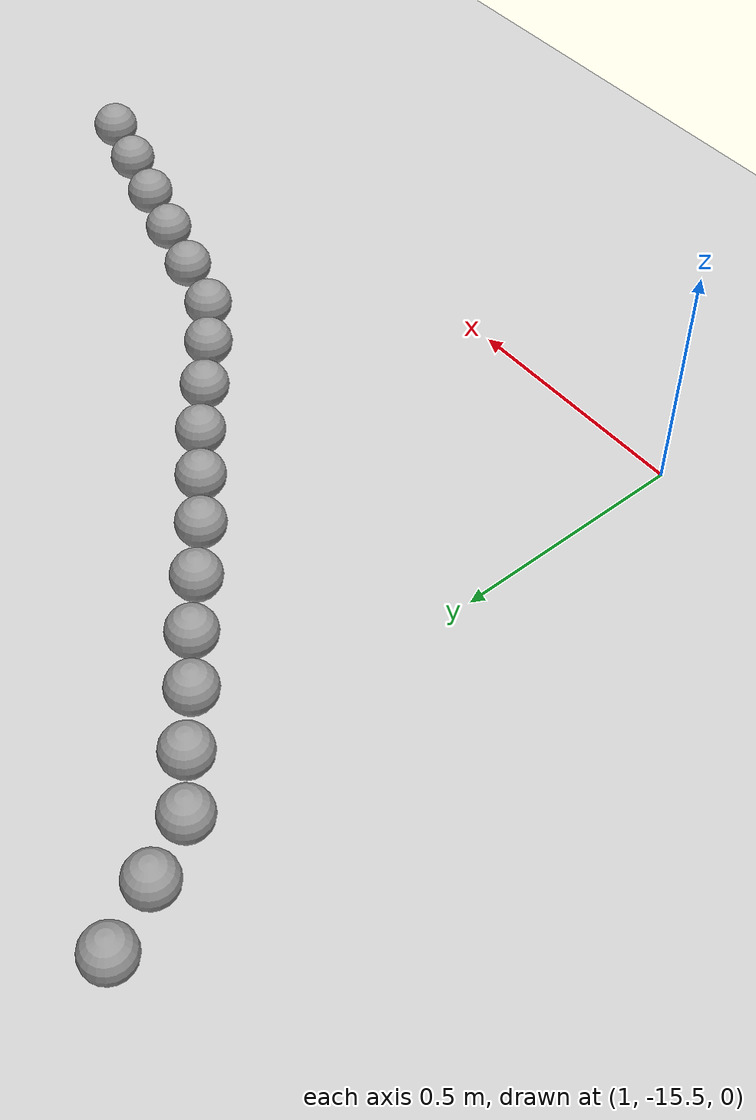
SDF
<sdf version="1.6">
 <world name="default">
  <model name="ground_plane">
   <static>1</static>
   <link name="link">
    <collision name="collision">
     <geometry><plane><normal>0 0 1</normal><size>100 100</size></plane></geometry>
     <surface><friction><ode><mu>100</mu><mu2>50</mu2></ode></friction></surface>
    </collision>
    <visual name="visual">
     <cast_shadows>0</cast_shadows>
     <geometry><plane><normal>0 0 1</normal><size>100 100</size></plane></geometry>
     <material>
      <script><uri>file://media/materials/scripts/gazebo.material</uri><name>Gazebo/Grey</name></script>
     </material>
    </visual>
   </link>
  </model>
  <model name="unit_sphere_0_575">
   <pose>2.570000 -15.280000 0.050000 0 -0 0</pose>
   <link name="link">
    <inertial>
     <mass>1</mass>
     <inertia><ixx>0.1</ixx><ixy>0</ixy><ixz>0</ixz><iyy>0.1</iyy><iyz>0</iyz><izz>0.1</izz></inertia>
    </inertial>
    <collision name="collision"><geometry><sphere><radius>0.050000</radius></sphere></geometry></collision>
    <visual name="visual">
     <geometry><sphere><radius>0.050000</radius></sphere></geometry>
     <material>
      <script><name>Gazebo/Grey</name><uri>file://media/materials/scripts/gazebo.material</uri></script>
     </material>
    </visual>
   </link>
  </model>
  <model name="unit_sphere_0_576">
   <pose>2.440000 -15.240000 0.050000 0 -0 0</pose>
   <link name="link">
    <inertial>
     <mass>1</mass>
     <inertia><ixx>0.1</ixx><ixy>0</ixy><ixz>0</ixz><iyy>0.1</iyy><iyz>0</iyz><izz>0.1</izz></inertia>
    </inertial>
    <collision name="collision"><geometry><sphere><radius>0.050000</radius></sphere></geometry></collision>
    <visual name="visual">
     <geometry><sphere><radius>0.050000</radius></sphere></geometry>
     <material>
      <script><name>Gazebo/Grey</name><uri>file://media/materials/scripts/gazebo.material</uri></script>
     </material>
    </visual>
   </link>
  </model>
  <model name="unit_sphere_0_577">
   <pose>2.310000 -15.200000 0.050000 0 -0 0</pose>
   <link name="link">
    <inertial>
     <mass>1</mass>
     <inertia><ixx>0.1</ixx><ixy>0</ixy><ixz>0</ixz><iyy>0.1</iyy><iyz>0</iyz><izz>0.1</izz></inertia>
    </inertial>
    <collision name="collision"><geometry><sphere><radius>0.050000</radius></sphere></geometry></collision>
    <visual name="visual">
     <geometry><sphere><radius>0.050000</radius></sphere></geometry>
     <material>
      <script><name>Gazebo/Grey</name><uri>file://media/materials/scripts/gazebo.material</uri></script>
     </material>
    </visual>
   </link>
  </model>
  <model name="unit_sphere_0_578">
   <pose>2.180000 -15.160000 0.050000 0 -0 0</pose>
   <link name="link">
    <inertial>
     <mass>1</mass>
     <inertia><ixx>0.1</ixx><ixy>0</ixy><ixz>0</ixz><iyy>0.1</iyy><iyz>0</iyz><izz>0.1</izz></inertia>
    </inertial>
    <collision name="collision"><geometry><sphere><radius>0.050000</radius></sphere></geometry></collision>
    <visual name="visual">
     <geometry><sphere><radius>0.050000</radius></sphere></geometry>
     <material>
      <script><name>Gazebo/Grey</name><uri>file://media/materials/scripts/gazebo.material</uri></script>
     </material>
    </visual>
   </link>
  </model>
  <model name="unit_sphere_0_579">
   <pose>2.050000 -15.120000 0.050000 0 -0 0</pose>
   <link name="link">
    <inertial>
     <mass>1</mass>
     <inertia><ixx>0.1</ixx><ixy>0</ixy><ixz>0</ixz><iyy>0.1</iyy><iyz>0</iyz><izz>0.1</izz></inertia>
    </inertial>
    <collision name="collision"><geometry><sphere><radius>0.050000</radius></sphere></geometry></collision>
    <visual name="visual">
     <geometry><sphere><radius>0.050000</radius></sphere></geometry>
     <material>
      <script><name>Gazebo/Grey</name><uri>file://media/materials/scripts/gazebo.material</uri></script>
     </material>
    </visual>
   </link>
  </model>
  <model name="unit_sphere_0_580">
   <pose>1.920000 -15.080000 0.050000 0 -0 0</pose>
   <link name="link">
    <inertial>
     <mass>1</mass>
     <inertia><ixx>0.1</ixx><ixy>0</ixy><ixz>0</ixz><iyy>0.1</iyy><iyz>0</iyz><izz>0.1</izz></inertia>
    </inertial>
    <collision name="collision"><geometry><sphere><radius>0.050000</radius></sphere></geometry></collision>
    <visual name="visual">
     <geometry><sphere><radius>0.050000</radius></sphere></geometry>
     <material>
      <script><name>Gazebo/Grey</name><uri>file://media/materials/scripts/gazebo.material</uri></script>
     </material>
    </visual>
   </link>
  </model>
  <model name="unit_sphere_0_581">
   <pose>1.822000 -15.010000 0.050000 0 -0 0</pose>
   <link name="link">
    <inertial>
     <mass>1</mass>
     <inertia><ixx>0.1</ixx><ixy>0</ixy><ixz>0</ixz><iyy>0.1</iyy><iyz>0</iyz><izz>0.1</izz></inertia>
    </inertial>
    <collision name="collision"><geometry><sphere><radius>0.050000</radius></sphere></geometry></collision>
    <visual name="visual">
     <geometry><sphere><radius>0.050000</radius></sphere></geometry>
     <material>
      <script><name>Gazebo/Grey</name><uri>file://media/materials/scripts/gazebo.material</uri></script>
     </material>
    </visual>
   </link>
  </model>
  <model name="unit_sphere_0_582">
   <pose>1.724000 -14.930000 0.050000 0 -0 0</pose>
   <link name="link">
    <inertial>
     <mass>1</mass>
     <inertia><ixx>0.1</ixx><ixy>0</ixy><ixz>0</ixz><iyy>0.1</iyy><iyz>0</iyz><izz>0.1</izz></inertia>
    </inertial>
    <collision name="collision"><geometry><sphere><radius>0.050000</radius></sphere></geometry></collision>
    <visual name="visual">
     <geometry><sphere><radius>0.050000</radius></sphere></geometry>
     <material>
      <script><name>Gazebo/Grey</name><uri>file://media/materials/scripts/gazebo.material</uri></script>
     </material>
    </visual>
   </link>
  </model>
  <model name="unit_sphere_0_583">
   <pose>1.626000 -14.850000 0.050000 0 -0 0</pose>
   <link name="link">
    <inertial>
     <mass>1</mass>
     <inertia><ixx>0.1</ixx><ixy>0</ixy><ixz>0</ixz><iyy>0.1</iyy><iyz>0</iyz><izz>0.1</izz></inertia>
    </inertial>
    <collision name="collision"><geometry><sphere><radius>0.050000</radius></sphere></geometry></collision>
    <visual name="visual">
     <geometry><sphere><radius>0.050000</radius></sphere></geometry>
     <material>
      <script><name>Gazebo/Grey</name><uri>file://media/materials/scripts/gazebo.material</uri></script>
     </material>
    </visual>
   </link>
  </model>
  <model name="unit_sphere_0_584">
   <pose>1.528000 -14.780000 0.050000 0 -0 0</pose>
   <link name="link">
    <inertial>
     <mass>1</mass>
     <inertia><ixx>0.1</ixx><ixy>0</ixy><ixz>0</ixz><iyy>0.1</iyy><iyz>0</iyz><izz>0.1</izz></inertia>
    </inertial>
    <collision name="collision"><geometry><sphere><radius>0.050000</radius></sphere></geometry></collision>
    <visual name="visual">
     <geometry><sphere><radius>0.050000</radius></sphere></geometry>
     <material>
      <script><name>Gazebo/Grey</name><uri>file://media/materials/scripts/gazebo.material</uri></script>
     </material>
    </visual>
   </link>
  </model>
  <model name="unit_sphere_0_585">
   <pose>1.430000 -14.710000 0.050000 0 -0 0</pose>
   <link name="link">
    <inertial>
     <mass>1</mass>
     <inertia><ixx>0.1</ixx><ixy>0</ixy><ixz>0</ixz><iyy>0.1</iyy><iyz>0</iyz><izz>0.1</izz></inertia>
    </inertial>
    <collision name="collision"><geometry><sphere><radius>0.050000</radius></sphere></geometry></collision>
    <visual name="visual">
     <geometry><sphere><radius>0.050000</radius></sphere></geometry>
     <material>
      <script><name>Gazebo/Grey</name><uri>file://media/materials/scripts/gazebo.material</uri></script>
     </material>
    </visual>
   </link>
  </model>
  <model name="unit_sphere_0_586">
   <pose>1.332000 -14.630000 0.050000 0 -0 0</pose>
   <link name="link">
    <inertial>
     <mass>1</mass>
     <inertia><ixx>0.1</ixx><ixy>0</ixy><ixz>0</ixz><iyy>0.1</iyy><iyz>0</iyz><izz>0.1</izz></inertia>
    </inertial>
    <collision name="collision"><geometry><sphere><radius>0.050000</radius></sphere></geometry></collision>
    <visual name="visual">
     <geometry><sphere><radius>0.050000</radius></sphere></geometry>
     <material>
      <script><name>Gazebo/Grey</name><uri>file://media/materials/scripts/gazebo.material</uri></script>
     </material>
    </visual>
   </link>
  </model>
  <model name="unit_sphere_0_587">
   <pose>1.234000 -14.550000 0.050000 0 -0 0</pose>
   <link name="link">
    <inertial>
     <mass>1</mass>
     <inertia><ixx>0.1</ixx><ixy>0</ixy><ixz>0</ixz><iyy>0.1</iyy><iyz>0</iyz><izz>0.1</izz></inertia>
    </inertial>
    <collision name="collision"><geometry><sphere><radius>0.050000</radius></sphere></geometry></collision>
    <visual name="visual">
     <geometry><sphere><radius>0.050000</radius></sphere></geometry>
     <material>
      <script><name>Gazebo/Grey</name><uri>file://media/materials/scripts/gazebo.material</uri></script>
     </material>
    </visual>
   </link>
  </model>
  <model name="unit_sphere_0_588">
   <pose>1.136000 -14.480000 0.050000 0 -0 0</pose>
   <link name="link">
    <inertial>
     <mass>1</mass>
     <inertia><ixx>0.1</ixx><ixy>0</ixy><ixz>0</ixz><iyy>0.1</iyy><iyz>0</iyz><izz>0.1</izz></inertia>
    </inertial>
    <collision name="collision"><geometry><sphere><radius>0.050000</radius></sphere></geometry></collision>
    <visual name="visual">
     <geometry><sphere><radius>0.050000</radius></sphere></geometry>
     <material>
      <script><name>Gazebo/Grey</name><uri>file://media/materials/scripts/gazebo.material</uri></script>
     </material>
    </visual>
   </link>
  </model>
  <model name="unit_sphere_0_589">
   <pose>1.038000 -14.400000 0.050000 0 -0 0</pose>
   <link name="link">
    <inertial>
     <mass>1</mass>
     <inertia><ixx>0.1</ixx><ixy>0</ixy><ixz>0</ixz><iyy>0.1</iyy><iyz>0</iyz><izz>0.1</izz></inertia>
    </inertial>
    <collision name="collision"><geometry><sphere><radius>0.050000</radius></sphere></geometry></collision>
    <visual name="visual">
     <geometry><sphere><radius>0.050000</radius></sphere></geometry>
     <material>
      <script><name>Gazebo/Grey</name><uri>file://media/materials/scripts/gazebo.material</uri></script>
     </material>
    </visual>
   </link>
  </model>
  <model name="unit_sphere_0_590">
   <pose>0.940000 -14.330000 0.050000 0 -0 0</pose>
   <link name="link">
    <inertial>
     <mass>1</mass>
     <inertia><ixx>0.1</ixx><ixy>0</ixy><ixz>0</ixz><iyy>0.1</iyy><iyz>0</iyz><izz>0.1</izz></inertia>
    </inertial>
    <collision name="collision"><geometry><sphere><radius>0.050000</radius></sphere></geometry></collision>
    <visual name="visual">
     <geometry><sphere><radius>0.050000</radius></sphere></geometry>
     <material>
      <script><name>Gazebo/Grey</name><uri>file://media/materials/scripts/gazebo.material</uri></script>
     </material>
    </visual>
   </link>
  </model>
  <model name="unit_sphere_0_591">
   <pose>0.879000 -14.220000 0.050000 0 -0 0</pose>
   <link name="link">
    <inertial>
     <mass>1</mass>
     <inertia><ixx>0.1</ixx><ixy>0</ixy><ixz>0</ixz><iyy>0.1</iyy><iyz>0</iyz><izz>0.1</izz></inertia>
    </inertial>
    <collision name="collision"><geometry><sphere><radius>0.050000</radius></sphere></geometry></collision>
    <visual name="visual">
     <geometry><sphere><radius>0.050000</radius></sphere></geometry>
     <material>
      <script><name>Gazebo/Grey</name><uri>file://media/materials/scripts/gazebo.material</uri></script>
     </material>
    </visual>
   </link>
  </model>
  <model name="unit_sphere_0_592">
   <pose>0.818000 -14.100000 0.050000 0 -0 0</pose>
   <link name="link">
    <inertial>
     <mass>1</mass>
     <inertia><ixx>0.1</ixx><ixy>0</ixy><ixz>0</ixz><iyy>0.1</iyy><iyz>0</iyz><izz>0.1</izz></inertia>
    </inertial>
    <collision name="collision"><geometry><sphere><radius>0.050000</radius></sphere></geometry></collision>
    <visual name="visual">
     <geometry><sphere><radius>0.050000</radius></sphere></geometry>
     <material>
      <script><name>Gazebo/Grey</name><uri>file://media/materials/scripts/gazebo.material</uri></script>
     </material>
    </visual>
   </link>
  </model>
 </world>
</sdf>
